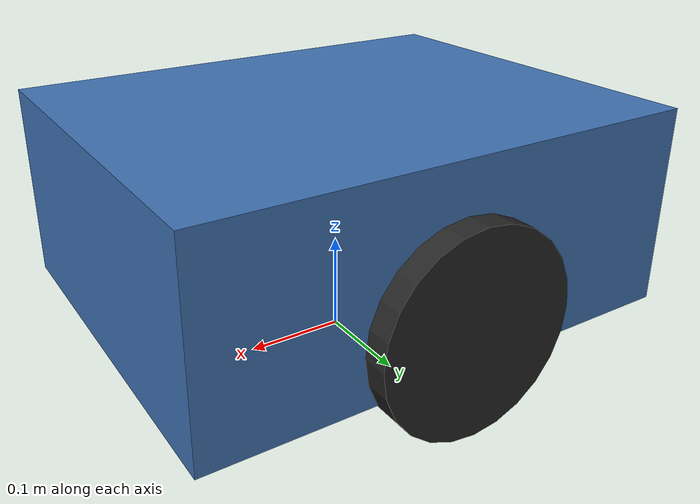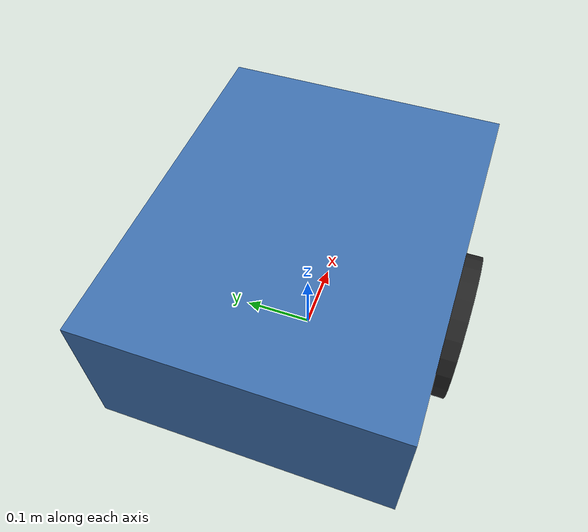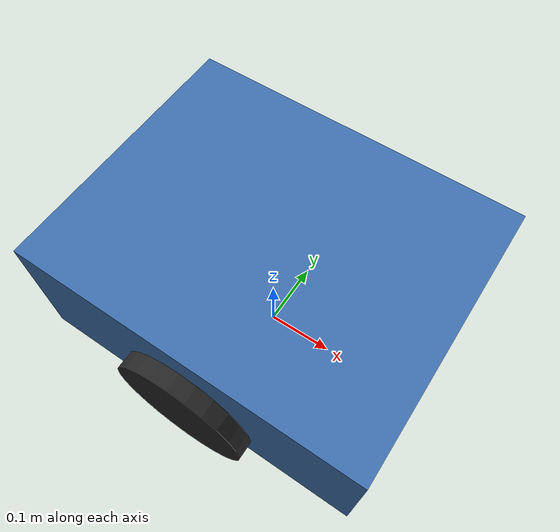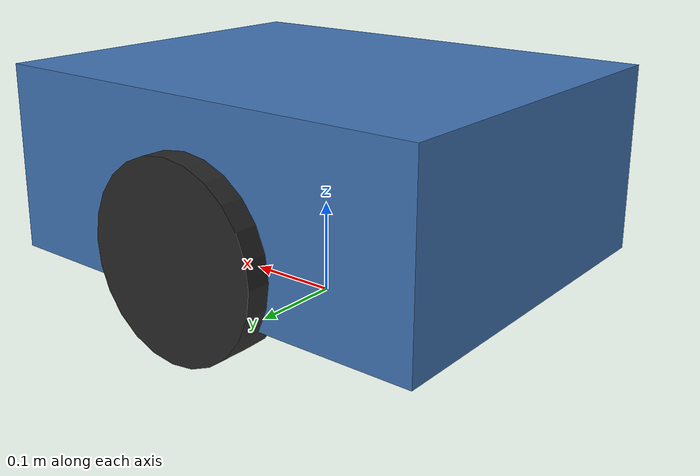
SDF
<?xml version="1.0" ?>
<sdf version="1.8">
  <model name="roboto_bot">

    <link name="base_link">
      <pose>0 0 0.15 0 0 0</pose>
      <inertial>
        <pose>0.07 0 0 0 0 0</pose>
        <mass>15.0</mass>
        <!-- Solid box 0.5 x 0.4 x 0.2: I = m/12 * (a^2 + b^2) -->
        <inertia>
          <ixx>0.2500</ixx><ixy>0</ixy><ixz>0</ixz>
          <iyy>0.3625</iyy><iyz>0</iyz>
          <izz>0.5125</izz>
        </inertia>
      </inertial>
      <collision name="collision">
        <geometry><box><size>0.5 0.4 0.2</size></box></geometry>
      </collision>
      <visual name="visual">
        <geometry><box><size>0.5 0.4 0.2</size></box></geometry>
        <material>
          <ambient>0.20 0.35 0.55 1</ambient>
          <diffuse>0.25 0.45 0.70 1</diffuse>
        </material>
      </visual>

      <sensor name="gpu_lidar" type="gpu_lidar">
        <!-- Clear of the chassis: a sensor inside its own collision box
             returns range_min on every beam. -->
        <pose>0.15 0 0.15 0 0 0</pose>
        <topic>scan</topic>
        <update_rate>10</update_rate>
        <always_on>true</always_on>
        <visualize>true</visualize>
        <lidar>
          <scan>
            <horizontal>
              <samples>180</samples>
              <resolution>1</resolution>
              <min_angle>-2.356194490</min_angle>  <!-- -135 deg -->
              <max_angle>2.356194490</max_angle>   <!-- +135 deg, 270 FOV -->
            </horizontal>
            <vertical>
              <samples>1</samples>
              <min_angle>0</min_angle>
              <max_angle>0</max_angle>
            </vertical>
          </scan>
          <range>
            <min>0.15</min>
            <max>30.0</max>
            <resolution>0.01</resolution>
          </range>
          <noise>
            <type>gaussian</type>
            <mean>0.0</mean>
            <stddev>0.02</stddev>
          </noise>
        </lidar>
      </sensor>
    </link>

    <link name="wheel_left">
      <pose>0 0.2 0.10 0 0 0</pose>
      <inertial>
        <mass>1.0</mass>
        <!-- Cylinder r=0.10 h=0.05, spin axis = y.
             about axis: m r^2 / 2 ; about diameter: m/12 (3r^2 + h^2) -->
        <inertia>
          <ixx>0.002708</ixx><ixy>0</ixy><ixz>0</ixz>
          <iyy>0.005000</iyy><iyz>0</iyz>
          <izz>0.002708</izz>
        </inertia>
      </inertial>
      <collision name="collision">
        <pose>0 0 0 1.5707963 0 0</pose>
        <geometry><cylinder><radius>0.10</radius><length>0.05</length></cylinder></geometry>
        <surface>
          <friction><ode><mu>1.0</mu><mu2>1.0</mu2></ode></friction>
        </surface>
      </collision>
      <visual name="visual">
        <pose>0 0 0 1.5707963 0 0</pose>
        <geometry><cylinder><radius>0.10</radius><length>0.05</length></cylinder></geometry>
        <material>
          <ambient>0.08 0.08 0.08 1</ambient>
          <diffuse>0.15 0.15 0.15 1</diffuse>
        </material>
      </visual>
    </link>

    <link name="wheel_right">
      <pose>0 -0.2 0.10 0 0 0</pose>
      <inertial>
        <mass>1.0</mass>
        <inertia>
          <ixx>0.002708</ixx><ixy>0</ixy><ixz>0</ixz>
          <iyy>0.005000</iyy><iyz>0</iyz>
          <izz>0.002708</izz>
        </inertia>
      </inertial>
      <collision name="collision">
        <pose>0 0 0 1.5707963 0 0</pose>
        <geometry><cylinder><radius>0.10</radius><length>0.05</length></cylinder></geometry>
        <surface>
          <friction><ode><mu>1.0</mu><mu2>1.0</mu2></ode></friction>
        </surface>
      </collision>
      <visual name="visual">
        <pose>0 0 0 1.5707963 0 0</pose>
        <geometry><cylinder><radius>0.10</radius><length>0.05</length></cylinder></geometry>
        <material>
          <ambient>0.08 0.08 0.08 1</ambient>
          <diffuse>0.15 0.15 0.15 1</diffuse>
        </material>
      </visual>
    </link>

    <link name="caster">
      <pose>0.18 0 0.05 0 0 0</pose>
      <inertial>
        <mass>0.5</mass>
        <inertia>
          <ixx>0.0005</ixx><ixy>0</ixy><ixz>0</ixz>
          <iyy>0.0005</iyy><iyz>0</iyz>
          <izz>0.0005</izz>
        </inertia>
      </inertial>
      <collision name="collision">
        <geometry><sphere><radius>0.05</radius></sphere></geometry>
        <surface>
          <!-- Near-frictionless: a caster that grips fights the drive
               wheels and makes the robot veer under pure-forward commands. -->
          <friction><ode><mu>0.001</mu><mu2>0.001</mu2></ode></friction>
        </surface>
      </collision>
      <visual name="visual">
        <geometry><sphere><radius>0.05</radius></sphere></geometry>
        <material><ambient>0.3 0.3 0.3 1</ambient></material>
      </visual>
    </link>

    <joint name="joint_wheel_left" type="revolute">
      <parent>base_link</parent>
      <child>wheel_left</child>
      <axis>
        <xyz>0 1 0</xyz>
        <limit><lower>-1e16</lower><upper>1e16</upper></limit>
        <dynamics><damping>0.02</damping></dynamics>
      </axis>
    </joint>

    <joint name="joint_wheel_right" type="revolute">
      <parent>base_link</parent>
      <child>wheel_right</child>
      <axis>
        <xyz>0 1 0</xyz>
        <limit><lower>-1e16</lower><upper>1e16</upper></limit>
        <dynamics><damping>0.02</damping></dynamics>
      </axis>
    </joint>

    <joint name="joint_caster" type="ball">
      <parent>base_link</parent>
      <child>caster</child>
    </joint>

    <plugin filename="ignition-gazebo-diff-drive-system"
            name="ignition::gazebo::systems::DiffDrive">
      <left_joint>joint_wheel_left</left_joint>
      <right_joint>joint_wheel_right</right_joint>
      <!-- Must match OdomErrorModel.wheel_baseline_m in
           roboto_core/sim/odom_corruptor.py -->
      <wheel_separation>0.4</wheel_separation>
      <wheel_radius>0.10</wheel_radius>
      <max_linear_acceleration>1.0</max_linear_acceleration>
      <topic>cmd_vel</topic>
      <odom_topic>odom</odom_topic>
      <tf_topic>tf</tf_topic>
      <frame_id>odom</frame_id>
      <child_frame_id>base_link</child_frame_id>
      <odom_publish_frequency>50</odom_publish_frequency>
    </plugin>

    <plugin filename="ignition-gazebo-pose-publisher-system"
            name="ignition::gazebo::systems::PosePublisher">
      <publish_link_pose>false</publish_link_pose>
      <publish_model_pose>true</publish_model_pose>
      <publish_nested_model_pose>false</publish_nested_model_pose>
      <use_pose_vector_msg>true</use_pose_vector_msg>
      <update_frequency>50</update_frequency>
    </plugin>

    <plugin filename="ignition-gazebo-joint-state-publisher-system"
            name="ignition::gazebo::systems::JointStatePublisher">
      <joint_name>joint_wheel_left</joint_name>
      <joint_name>joint_wheel_right</joint_name>
    </plugin>

  </model>
</sdf>
